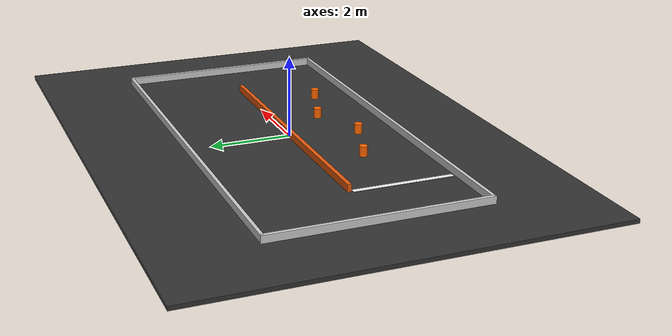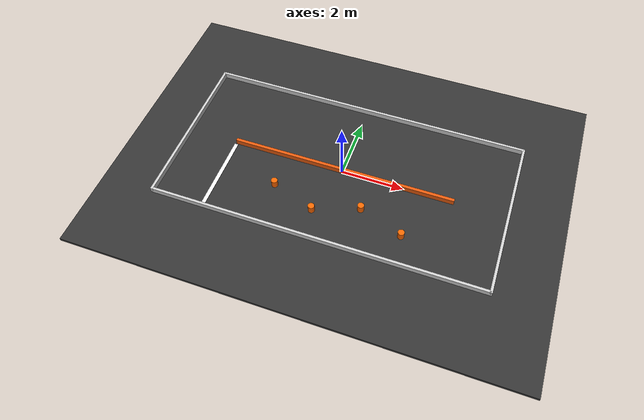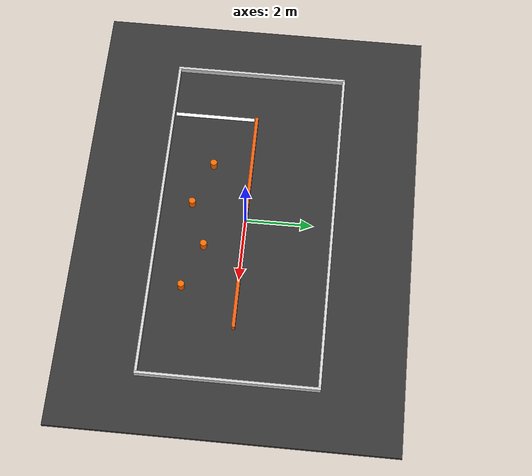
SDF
<?xml version="1.0"?>

<sdf version="1.9">
  <world name="iot_car_test_track">

    <!-- Gazebo-Systeme -->
    <plugin
      filename="gz-sim-sensors-system"
      name="gz::sim::systems::Sensors">

      <render_engine>ogre2</render_engine>

    </plugin>

    <!-- Grundeinstellungen -->
    <gravity>0 0 -9.81</gravity>

    <physics name="default_physics" type="ode">
      <max_step_size>0.001</max_step_size>
      <real_time_factor>1.0</real_time_factor>
    </physics>

    <!-- Licht -->
    <light type="directional" name="sun">
      <cast_shadows>true</cast_shadows>

      <pose>0 0 10 0 0 0</pose>

      <diffuse>0.8 0.8 0.8 1</diffuse>
      <specular>0.2 0.2 0.2 1</specular>

      <direction>-0.4 0.3 -1</direction>
    </light>

    <!-- Boden -->
    <model name="ground">
      <static>true</static>

      <link name="ground_link">

        <collision name="ground_collision">
          <geometry>
            <box>
              <size>14 10 0.10</size>
            </box>
          </geometry>

          <surface>
            <friction>
              <ode>
                <mu>1.2</mu>
                <mu2>1.2</mu2>
              </ode>
            </friction>
          </surface>
        </collision>

        <visual name="ground_visual">
          <geometry>
            <box>
              <size>14 10 0.10</size>
            </box>
          </geometry>

          <material>
            <ambient>0.16 0.16 0.16 1</ambient>
            <diffuse>0.20 0.20 0.20 1</diffuse>
          </material>
        </visual>

      </link>

      <pose>0 0 -0.05 0 0 0</pose>
    </model>

    <!-- Äußere Streckenbegrenzung -->
    <model name="wall_top">
      <static>true</static>

      <link name="link">
        <collision name="collision">
          <geometry>
            <box>
              <size>10.5 0.08 0.18</size>
            </box>
          </geometry>
        </collision>

        <visual name="visual">
          <geometry>
            <box>
              <size>10.5 0.08 0.18</size>
            </box>
          </geometry>

          <material>
            <ambient>0.8 0.8 0.8 1</ambient>
            <diffuse>0.8 0.8 0.8 1</diffuse>
          </material>
        </visual>
      </link>

      <pose>0 2.6 0.09 0 0 0</pose>
    </model>

    <model name="wall_bottom">
      <static>true</static>

      <link name="link">
        <collision name="collision">
          <geometry>
            <box>
              <size>10.5 0.08 0.18</size>
            </box>
          </geometry>
        </collision>

        <visual name="visual">
          <geometry>
            <box>
              <size>10.5 0.08 0.18</size>
            </box>
          </geometry>

          <material>
            <ambient>0.8 0.8 0.8 1</ambient>
            <diffuse>0.8 0.8 0.8 1</diffuse>
          </material>
        </visual>
      </link>

      <pose>0 -2.6 0.09 0 0 0</pose>
    </model>

    <model name="wall_left">
      <static>true</static>

      <link name="link">
        <collision name="collision">
          <geometry>
            <box>
              <size>0.08 5.28 0.18</size>
            </box>
          </geometry>
        </collision>

        <visual name="visual">
          <geometry>
            <box>
              <size>0.08 5.28 0.18</size>
            </box>
          </geometry>

          <material>
            <ambient>0.8 0.8 0.8 1</ambient>
            <diffuse>0.8 0.8 0.8 1</diffuse>
          </material>
        </visual>
      </link>

      <pose>-5.25 0 0.09 0 0 0</pose>
    </model>

    <model name="wall_right">
      <static>true</static>

      <link name="link">
        <collision name="collision">
          <geometry>
            <box>
              <size>0.08 5.28 0.18</size>
            </box>
          </geometry>
        </collision>

        <visual name="visual">
          <geometry>
            <box>
              <size>0.08 5.28 0.18</size>
            </box>
          </geometry>

          <material>
            <ambient>0.8 0.8 0.8 1</ambient>
            <diffuse>0.8 0.8 0.8 1</diffuse>
          </material>
        </visual>
      </link>

      <pose>5.25 0 0.09 0 0 0</pose>
    </model>

    <!-- Mittlere Trennwand für die beiden Geraden -->
    <model name="center_wall">
      <static>true</static>

      <link name="link">
        <collision name="collision">
          <geometry>
            <box>
              <size>7.2 0.10 0.18</size>
            </box>
          </geometry>
        </collision>

        <visual name="visual">
          <geometry>
            <box>
              <size>7.2 0.10 0.18</size>
            </box>
          </geometry>

          <material>
            <ambient>0.9 0.35 0.05 1</ambient>
            <diffuse>0.9 0.35 0.05 1</diffuse>
          </material>
        </visual>
      </link>

      <pose>0 0 0.09 0 0 0</pose>
    </model>

    <!-- Slalom -->
    <model name="cone_1">
      <static>true</static>

      <link name="link">
        <collision name="collision">
          <geometry>
            <cylinder>
              <radius>0.10</radius>
              <length>0.25</length>
            </cylinder>
          </geometry>
        </collision>

        <visual name="visual">
          <geometry>
            <cylinder>
              <radius>0.10</radius>
              <length>0.25</length>
            </cylinder>
          </geometry>

          <material>
            <ambient>1 0.4 0 1</ambient>
            <diffuse>1 0.4 0 1</diffuse>
          </material>
        </visual>
      </link>

      <pose>-1.8 -1.15 0.125 0 0 0</pose>
    </model>

    <model name="cone_2">
      <static>true</static>

      <link name="link">
        <collision name="collision">
          <geometry>
            <cylinder>
              <radius>0.10</radius>
              <length>0.25</length>
            </cylinder>
          </geometry>
        </collision>

        <visual name="visual">
          <geometry>
            <cylinder>
              <radius>0.10</radius>
              <length>0.25</length>
            </cylinder>
          </geometry>

          <material>
            <ambient>1 0.4 0 1</ambient>
            <diffuse>1 0.4 0 1</diffuse>
          </material>
        </visual>
      </link>

      <pose>-0.4 -1.65 0.125 0 0 0</pose>
    </model>

    <model name="cone_3">
      <static>true</static>

      <link name="link">
        <collision name="collision">
          <geometry>
            <cylinder>
              <radius>0.10</radius>
              <length>0.25</length>
            </cylinder>
          </geometry>
        </collision>

        <visual name="visual">
          <geometry>
            <cylinder>
              <radius>0.10</radius>
              <length>0.25</length>
            </cylinder>
          </geometry>

          <material>
            <ambient>1 0.4 0 1</ambient>
            <diffuse>1 0.4 0 1</diffuse>
          </material>
        </visual>
      </link>

      <pose>1.0 -1.15 0.125 0 0 0</pose>
    </model>

    <model name="cone_4">
      <static>true</static>

      <link name="link">
        <collision name="collision">
          <geometry>
            <cylinder>
              <radius>0.10</radius>
              <length>0.25</length>
            </cylinder>
          </geometry>
        </collision>

        <visual name="visual">
          <geometry>
            <cylinder>
              <radius>0.10</radius>
              <length>0.25</length>
            </cylinder>
          </geometry>

          <material>
            <ambient>1 0.4 0 1</ambient>
            <diffuse>1 0.4 0 1</diffuse>
          </material>
        </visual>
      </link>

      <pose>2.4 -1.65 0.125 0 0 0</pose>
    </model>

    <!-- Start-/Ziellinie -->
    <model name="start_finish">
      <static>true</static>

      <link name="link">
        <visual name="visual">
          <geometry>
            <box>
              <size>0.12 2.45 0.01</size>
            </box>
          </geometry>

          <material>
            <ambient>0.95 0.95 0.95 1</ambient>
            <diffuse>0.95 0.95 0.95 1</diffuse>
          </material>
        </visual>
      </link>

      <pose>-3.6 -1.3 0.008 0 0 0</pose>
    </model>

  </world>
</sdf>
